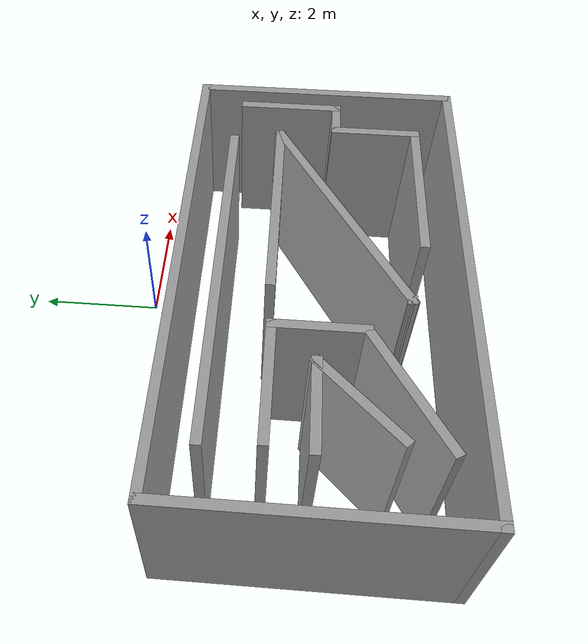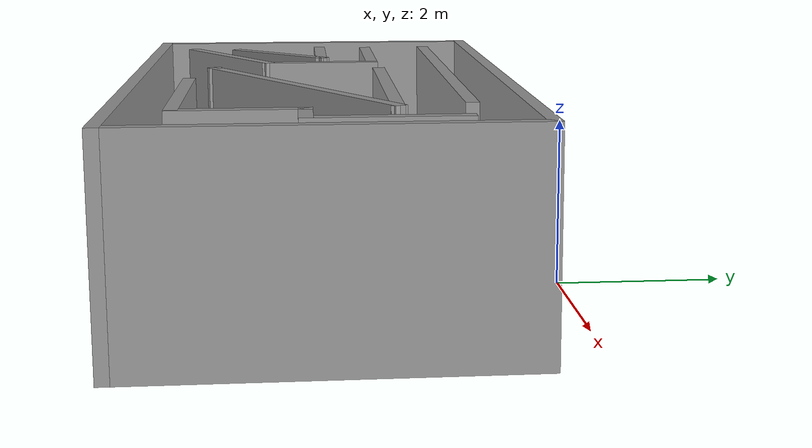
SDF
<?xml version='1.0'?>
<sdf version='1.7'>
  <model name='turtlebot3_maze'>
    <pose>-0.78 -2.5425 0 0 -0 0</pose>
    <link name='Wall_0'>
      <collision name='Wall_0_Collision'>
        <geometry>
          <box>
            <size>4.5 0.15 2.5</size>
          </box>
        </geometry>
        <pose>0 0 1.25 0 -0 0</pose>
      </collision>
      <visual name='Wall_0_Visual'>
        <pose>0 0 1.25 0 -0 0</pose>
        <geometry>
          <box>
            <size>4.5 0.15 2.5</size>
          </box>
        </geometry>
        <material>
          <script>
            <uri>file://media/materials/scripts/gazebo.material</uri>
            <name>Gazebo/Grey</name>
          </script>
          <ambient>1 1 1 1</ambient>
        </material>
        <meta>
          <layer>0</layer>
        </meta>
      </visual>
      <pose>-4.05 -0.2925 0 0 -0 1.5708</pose>
    </link>
    <link name='Wall_1'>
      <collision name='Wall_1_Collision'>
        <geometry>
          <box>
            <size>8.25 0.15 2.5</size>
          </box>
        </geometry>
        <pose>0 0 1.25 0 -0 0</pose>
      </collision>
      <visual name='Wall_1_Visual'>
        <pose>0 0 1.25 0 -0 0</pose>
        <geometry>
          <box>
            <size>8.25 0.15 2.5</size>
          </box>
        </geometry>
        <material>
          <script>
            <uri>file://media/materials/scripts/gazebo.material</uri>
            <name>Gazebo/Grey</name>
          </script>
          <ambient>1 1 1 1</ambient>
        </material>
        <meta>
          <layer>0</layer>
        </meta>
      </visual>
      <pose>0 1.8825 0 0 -0 0</pose>
    </link>
    <link name='Wall_11'>
      <collision name='Wall_11_Collision'>
        <geometry>
          <box>
            <size>1.5 0.15 2.5</size>
          </box>
        </geometry>
        <pose>0 0 1.25 0 -0 0</pose>
      </collision>
      <visual name='Wall_11_Visual'>
        <pose>0 0 1.25 0 -0 0</pose>
        <geometry>
          <box>
            <size>1.5 0.15 2.5</size>
          </box>
        </geometry>
        <material>
          <script>
            <uri>file://media/materials/scripts/gazebo.material</uri>
            <name>Gazebo/Grey</name>
          </script>
          <ambient>1 1 1 1</ambient>
        </material>
        <meta>
          <layer>0</layer>
        </meta>
      </visual>
      <pose>-2.555 -0.2375 0 0 -0 0</pose>
    </link>
    <link name='Wall_12'>
      <collision name='Wall_12_Collision'>
        <geometry>
          <box>
            <size>1.75 0.15 2.5</size>
          </box>
        </geometry>
        <pose>0 0 1.25 0 -0 0</pose>
      </collision>
      <visual name='Wall_12_Visual'>
        <pose>0 0 1.25 0 -0 0</pose>
        <geometry>
          <box>
            <size>1.75 0.15 2.5</size>
          </box>
        </geometry>
        <material>
          <script>
            <uri>file://media/materials/scripts/gazebo.material</uri>
            <name>Gazebo/Grey</name>
          </script>
          <ambient>1 1 1 1</ambient>
        </material>
        <meta>
          <layer>0</layer>
        </meta>
      </visual>
      <pose>-2.44569 -0.803185 0 0 -0 -2.35619</pose>
    </link>
    <link name='Wall_14'>
      <collision name='Wall_14_Collision'>
        <geometry>
          <box>
            <size>3.5 0.15 2.5</size>
          </box>
        </geometry>
        <pose>0 0 1.25 0 -0 0</pose>
      </collision>
      <visual name='Wall_14_Visual'>
        <pose>0 0 1.25 0 -0 0</pose>
        <geometry>
          <box>
            <size>3.5 0.15 2.5</size>
          </box>
        </geometry>
        <material>
          <script>
            <uri>file://media/materials/scripts/gazebo.material</uri>
            <name>Gazebo/Grey</name>
          </script>
          <ambient>1 1 1 1</ambient>
        </material>
        <meta>
          <layer>0</layer>
        </meta>
      </visual>
      <pose>1.145 0.4625 0 0 -0 0</pose>
    </link>
    <link name='Wall_15'>
      <collision name='Wall_15_Collision'>
        <geometry>
          <box>
            <size>4.25 0.15 2.5</size>
          </box>
        </geometry>
        <pose>0 0 1.25 0 -0 0</pose>
      </collision>
      <visual name='Wall_15_Visual'>
        <pose>0 0 1.25 0 -0 0</pose>
        <geometry>
          <box>
            <size>4.25 0.15 2.5</size>
          </box>
        </geometry>
        <material>
          <script>
            <uri>file://media/materials/scripts/gazebo.material</uri>
            <name>Gazebo/Grey</name>
          </script>
          <ambient>1 1 1 1</ambient>
        </material>
        <meta>
          <layer>0</layer>
        </meta>
      </visual>
      <pose>1.04465 -0.5625 0 0 -0 -2.61799</pose>
    </link>
    <link name='Wall_16'>
      <collision name='Wall_16_Collision'>
        <geometry>
          <box>
            <size>0.16 0.15 2.5</size>
          </box>
        </geometry>
        <pose>0 0 1.25 0 -0 0</pose>
      </collision>
      <visual name='Wall_16_Visual'>
        <pose>0 0 1.25 0 -0 0</pose>
        <geometry>
          <box>
            <size>0.16 0.15 2.5</size>
          </box>
        </geometry>
        <material>
          <script>
            <uri>file://media/materials/scripts/gazebo.material</uri>
            <name>Gazebo/Grey</name>
          </script>
          <ambient>1 1 1 1</ambient>
        </material>
        <meta>
          <layer>0</layer>
        </meta>
      </visual>
      <pose>-0.725704 -1.5875 0 0 -0 0</pose>
    </link>
    <link name='Wall_18'>
      <collision name='Wall_18_Collision'>
        <geometry>
          <box>
            <size>2.75 0.15 2.5</size>
          </box>
        </geometry>
        <pose>0 0 1.25 0 -0 0</pose>
      </collision>
      <visual name='Wall_18_Visual'>
        <pose>0 0 1.25 0 -0 0</pose>
        <geometry>
          <box>
            <size>2.75 0.15 2.5</size>
          </box>
        </geometry>
        <material>
          <script>
            <uri>file://media/materials/scripts/gazebo.material</uri>
            <name>Gazebo/Grey</name>
          </script>
          <ambient>1 1 1 1</ambient>
        </material>
        <meta>
          <layer>0</layer>
        </meta>
      </visual>
      <pose>1.7 -1.8375 0 0 -0 0</pose>
    </link>
    <link name='Wall_19'>
      <collision name='Wall_19_Collision'>
        <geometry>
          <box>
            <size>1.5 0.15 2.5</size>
          </box>
        </geometry>
        <pose>0 0 1.25 0 -0 0</pose>
      </collision>
      <visual name='Wall_19_Visual'>
        <pose>0 0 1.25 0 -0 0</pose>
        <geometry>
          <box>
            <size>1.5 0.15 2.5</size>
          </box>
        </geometry>
        <material>
          <script>
            <uri>file://media/materials/scripts/gazebo.material</uri>
            <name>Gazebo/Grey</name>
          </script>
          <ambient>1 1 1 1</ambient>
        </material>
        <meta>
          <layer>0</layer>
        </meta>
      </visual>
      <pose>3 -1.1625 0 0 -0 1.5708</pose>
    </link>
    <link name='Wall_2'>
      <collision name='Wall_2_Collision'>
        <geometry>
          <box>
            <size>4.5 0.15 2.5</size>
          </box>
        </geometry>
        <pose>0 0 1.25 0 -0 0</pose>
      </collision>
      <visual name='Wall_2_Visual'>
        <pose>0 0 1.25 0 -0 0</pose>
        <geometry>
          <box>
            <size>4.5 0.15 2.5</size>
          </box>
        </geometry>
        <material>
          <script>
            <uri>file://media/materials/scripts/gazebo.material</uri>
            <name>Gazebo/Grey</name>
          </script>
          <ambient>1 1 1 1</ambient>
        </material>
        <meta>
          <layer>0</layer>
        </meta>
      </visual>
      <pose>4.05 -0.2925 0 0 -0 -1.5708</pose>
    </link>
    <link name='Wall_20'>
      <collision name='Wall_20_Collision'>
        <geometry>
          <box>
            <size>0.75 0.15 2.5</size>
          </box>
        </geometry>
        <pose>0 0 1.25 0 -0 0</pose>
      </collision>
      <visual name='Wall_20_Visual'>
        <pose>0 0 1.25 0 -0 0</pose>
        <geometry>
          <box>
            <size>0.75 0.15 2.5</size>
          </box>
        </geometry>
        <material>
          <script>
            <uri>file://media/materials/scripts/gazebo.material</uri>
            <name>Gazebo/Grey</name>
          </script>
          <ambient>1 1 1 1</ambient>
        </material>
        <meta>
          <layer>0</layer>
        </meta>
      </visual>
      <pose>3.3 -0.4875 0 0 -0 0</pose>
    </link>
    <link name='Wall_21'>
      <collision name='Wall_21_Collision'>
        <geometry>
          <box>
            <size>1.75 0.15 2.5</size>
          </box>
        </geometry>
        <pose>0 0 1.25 0 -0 0</pose>
      </collision>
      <visual name='Wall_21_Visual'>
        <pose>0 0 1.25 0 -0 0</pose>
        <geometry>
          <box>
            <size>1.75 0.15 2.5</size>
          </box>
        </geometry>
        <material>
          <script>
            <uri>file://media/materials/scripts/gazebo.material</uri>
            <name>Gazebo/Grey</name>
          </script>
          <ambient>1 1 1 1</ambient>
        </material>
        <meta>
          <layer>0</layer>
        </meta>
      </visual>
      <pose>3.6 0.3125 0 0 -0 1.5708</pose>
    </link>
    <link name='Wall_3'>
      <collision name='Wall_3_Collision'>
        <geometry>
          <box>
            <size>8.25 0.15 2.5</size>
          </box>
        </geometry>
        <pose>0 0 1.25 0 -0 0</pose>
      </collision>
      <visual name='Wall_3_Visual'>
        <pose>0 0 1.25 0 -0 0</pose>
        <geometry>
          <box>
            <size>8.25 0.15 2.5</size>
          </box>
        </geometry>
        <material>
          <script>
            <uri>file://media/materials/scripts/gazebo.material</uri>
            <name>Gazebo/Grey</name>
          </script>
          <ambient>1 1 1 1</ambient>
        </material>
        <meta>
          <layer>0</layer>
        </meta>
      </visual>
      <pose>0 -2.4675 0 0 -0 3.14159</pose>
    </link>
    <link name='Wall_5'>
      <collision name='Wall_5_Collision'>
        <geometry>
          <box>
            <size>6 0.15 2.5</size>
          </box>
        </geometry>
        <pose>0 0 1.25 0 -0 0</pose>
      </collision>
      <visual name='Wall_5_Visual'>
        <pose>0 0 1.25 0 -0 0</pose>
        <geometry>
          <box>
            <size>6 0.15 2.5</size>
          </box>
        </geometry>
        <material>
          <script>
            <uri>file://media/materials/scripts/gazebo.material</uri>
            <name>Gazebo/Grey</name>
          </script>
          <ambient>1 1 1 1</ambient>
        </material>
        <meta>
          <layer>0</layer>
        </meta>
      </visual>
      <pose>-0.285 1.2525 0 0 -0 0</pose>
    </link>
    <link name='Wall_7'>
      <collision name='Wall_7_Collision'>
        <geometry>
          <box>
            <size>2 0.15 2.5</size>
          </box>
        </geometry>
        <pose>0 0 1.25 0 -0 0</pose>
      </collision>
      <visual name='Wall_7_Visual'>
        <pose>0 0 1.25 0 -0 0</pose>
        <geometry>
          <box>
            <size>2 0.15 2.5</size>
          </box>
        </geometry>
        <material>
          <script>
            <uri>file://media/materials/scripts/gazebo.material</uri>
            <name>Gazebo/Grey</name>
          </script>
          <ambient>1 1 1 1</ambient>
        </material>
        <meta>
          <layer>0</layer>
        </meta>
      </visual>
      <pose>-2.225 0.4125 0 0 -0 0</pose>
    </link>
    <link name='Wall_8'>
      <collision name='Wall_8_Collision'>
        <geometry>
          <box>
            <size>1.5 0.15 2.5</size>
          </box>
        </geometry>
        <pose>0 0 1.25 0 -0 0</pose>
      </collision>
      <visual name='Wall_8_Visual'>
        <pose>0 0 1.25 0 -0 0</pose>
        <geometry>
          <box>
            <size>1.5 0.15 2.5</size>
          </box>
        </geometry>
        <material>
          <script>
            <uri>file://media/materials/scripts/gazebo.material</uri>
            <name>Gazebo/Grey</name>
          </script>
          <ambient>1 1 1 1</ambient>
        </material>
        <meta>
          <layer>0</layer>
        </meta>
      </visual>
      <pose>-1.3 -0.2625 0 0 -0 -1.5708</pose>
    </link>
    <link name='Wall_9'>
      <collision name='Wall_9_Collision'>
        <geometry>
          <box>
            <size>2.25 0.15 2.5</size>
          </box>
        </geometry>
        <pose>0 0 1.25 0 -0 0</pose>
      </collision>
      <visual name='Wall_9_Visual'>
        <pose>0 0 1.25 0 -0 0</pose>
        <geometry>
          <box>
            <size>2.25 0.15 2.5</size>
          </box>
        </geometry>
        <material>
          <script>
            <uri>file://media/materials/scripts/gazebo.material</uri>
            <name>Gazebo/Grey</name>
          </script>
          <ambient>1 1 1 1</ambient>
        </material>
        <meta>
          <layer>0</layer>
        </meta>
      </visual>
      <pose>-2.20933 -1.4625 0 0 -0 -2.61799</pose>
    </link>
    <static>1</static>
  </model>
</sdf>
